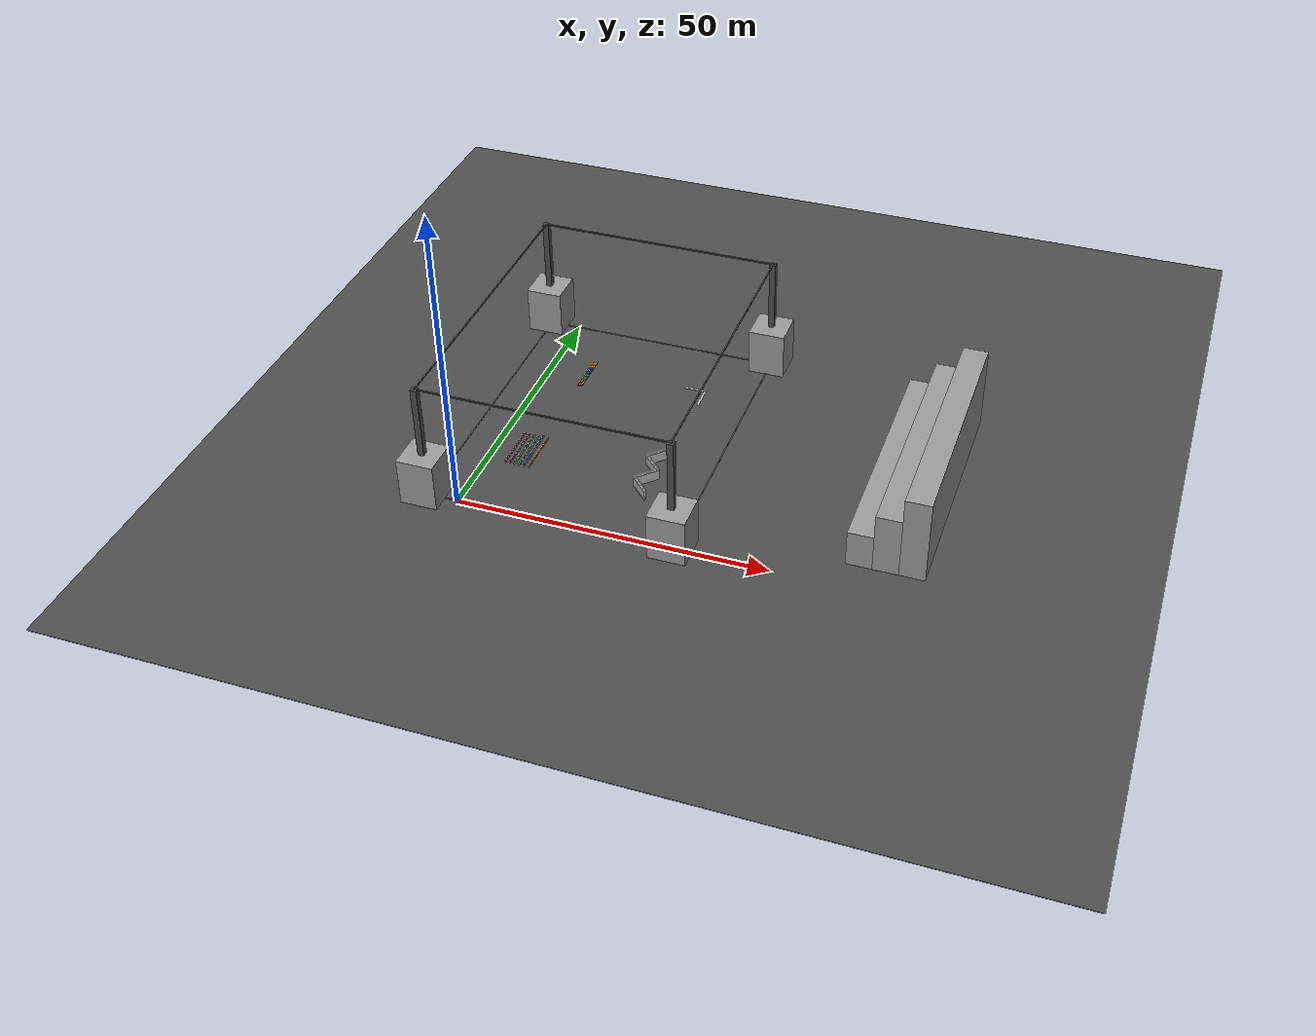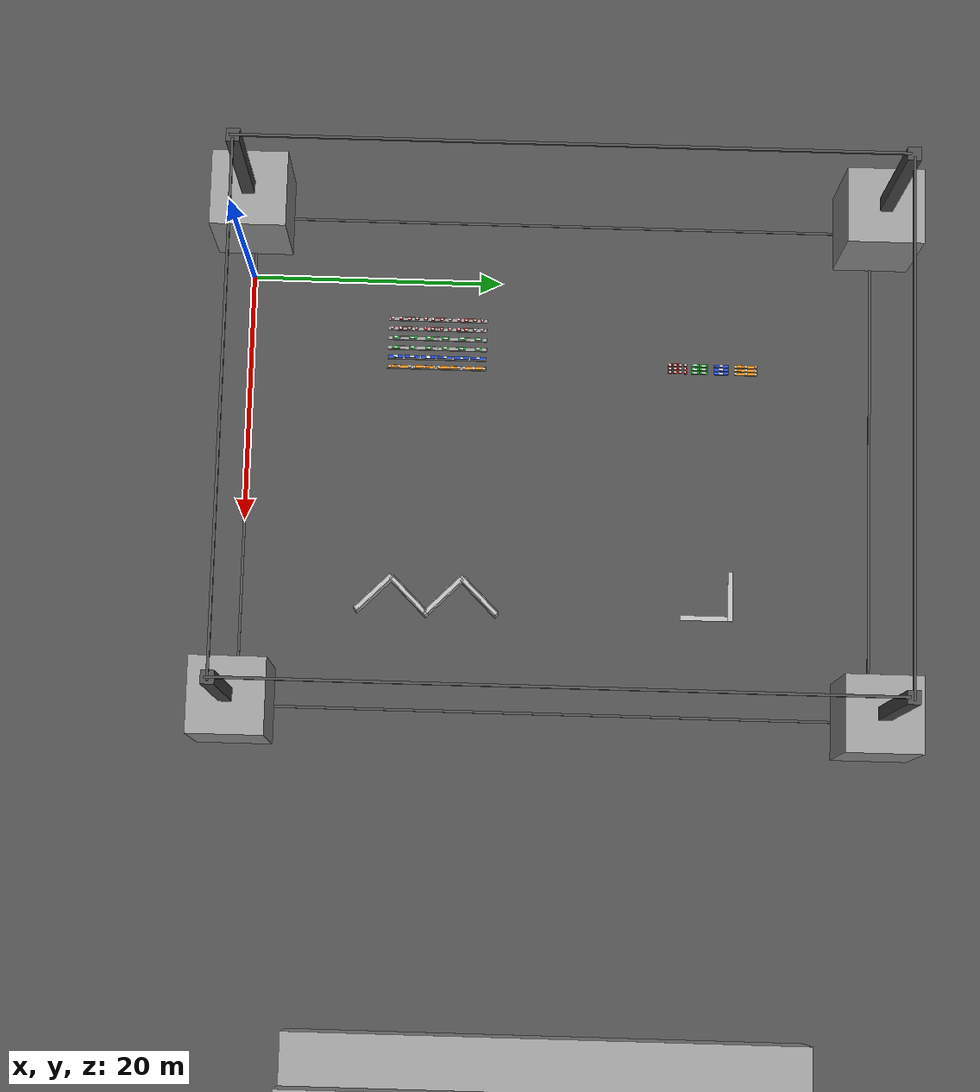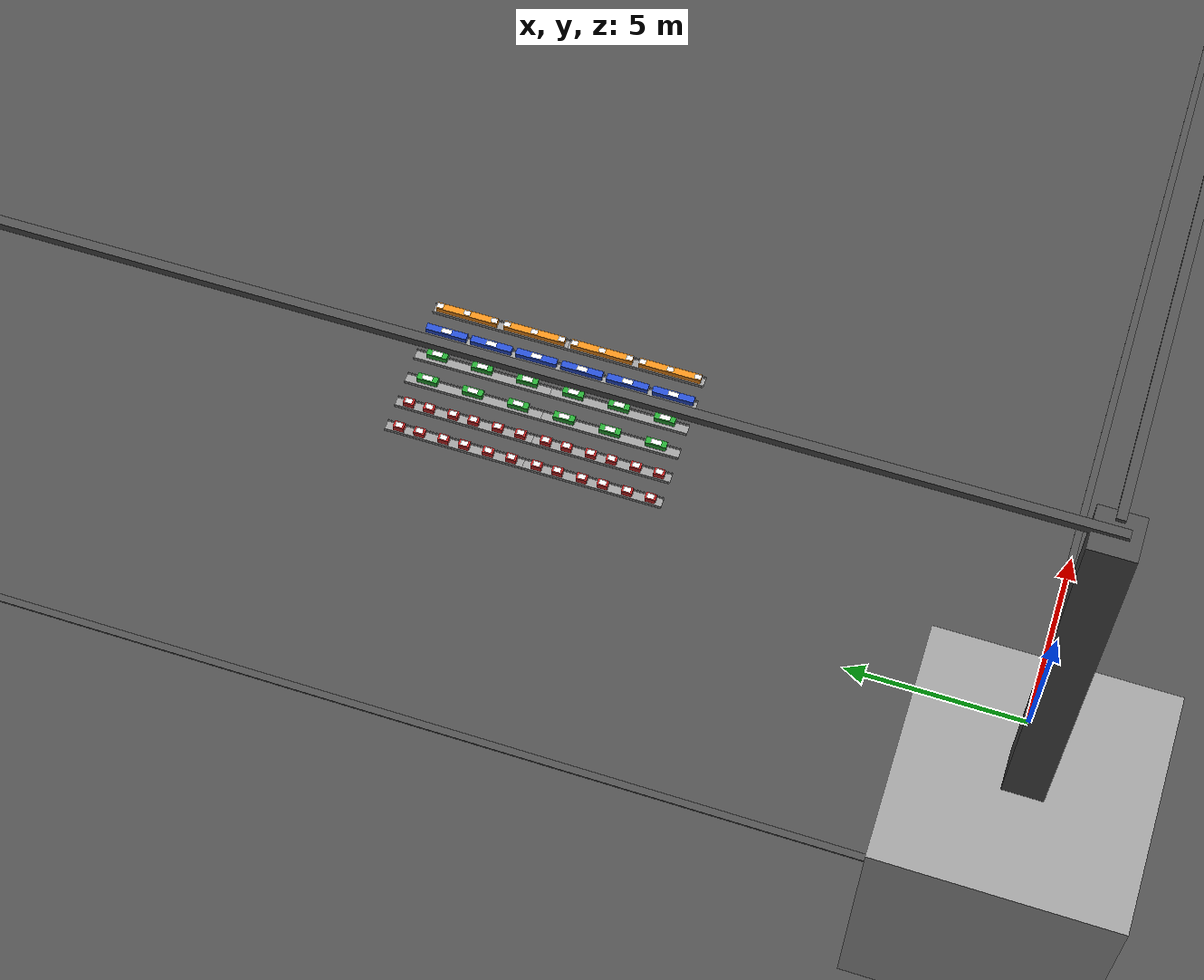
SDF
<?xml version="1.0" ?>
<sdf version="1.5">
  <world name="default">

    <gui fullscreen='0'>
      <camera name='user_camera'>
        <pose>-61.3 -26.2 72 0 0.53 0.62</pose>
      </camera>
    </gui>

    <scene>
      <grid>false</grid>
      <origin_visual>false</origin_visual>
    </scene>

    <!-- A global light source -->
    <include>
      <uri>model://sun</uri>
    </include>
    <!-- A ground plane -->
    <include>
      <uri>model://mbzirc_plane</uri>
      <name>mbzirc_plane</name>
	  <pose> 30.0 30.0 0.1 0 0 0 </pose>
    </include>

    <include>
      <uri>model://mbzirc_uav_wall</uri>
      <name>mbzirc_uav_wall</name>
	  <pose> 26.0 19.0 0.1 0 0 2.3561944902</pose>
    </include>
    <include>
      <uri>model://mbzirc_ugv_wall</uri>
      <name>mbzirc_ugv_wall</name>
	  <pose> 27.0 37.0 0.1 0 0 0 </pose>
    </include>

    <include>
      <uri>model://mbzirc_uav_channel</uri>
      <name>mbzirc_uav_channel_1</name>
	  <pose> 7.0 15.0 0.1 0 0 0 </pose>
    </include>
    <include>
      <uri>model://mbzirc_uav_channel</uri>
      <name>mbzirc_uav_channel_2</name>
	  <pose> 7.0 11.0 0.1 0 0 0 </pose>
    </include>
    <include>
      <uri>model://mbzirc_uav_channel</uri>
      <name>mbzirc_uav_channel_3</name>
	  <pose> 6.2 15.0 0.1 0 0 0 </pose>
    </include>
    <include>
      <uri>model://mbzirc_uav_channel</uri>
      <name>mbzirc_uav_channel_4</name>
	  <pose> 6.2 11.0 0.1 0 0 0 </pose>
    </include>
    <include>
      <uri>model://mbzirc_uav_channel</uri>
      <name>mbzirc_uav_channel_5</name>
	  <pose> 5.4 15.0 0.1 0 0 0 </pose>
    </include>
    <include>
      <uri>model://mbzirc_uav_channel</uri>
      <name>mbzirc_uav_channel_6</name>
	  <pose> 5.4 11.0 0.1 0 0 0 </pose>
    </include>
    <include>
      <uri>model://mbzirc_uav_channel</uri>
      <name>mbzirc_uav_channel_7</name>
	  <pose> 4.6 15.0 0.1 0 0 0 </pose>
    </include>
    <include>
      <uri>model://mbzirc_uav_channel</uri>
      <name>mbzirc_uav_channel_8</name>
	  <pose> 4.6 11.0 0.1 0 0 0 </pose>
    </include>
    <include>
      <uri>model://mbzirc_uav_channel</uri>
      <name>mbzirc_uav_channel_9</name>
	  <pose> 3.8 15.0 0.1 0 0 0 </pose>
    </include>
    <include>
      <uri>model://mbzirc_uav_channel</uri>
      <name>mbzirc_uav_channel_10</name>
	  <pose> 3.8 11.0 0.1 0 0 0 </pose>
    </include>
    <include>
      <uri>model://mbzirc_uav_channel</uri>
      <name>mbzirc_uav_channel_11</name>
	  <pose> 3.0 15.0 0.1 0 0 0 </pose>
    </include>
    <include>
      <uri>model://mbzirc_uav_channel</uri>
      <name>mbzirc_uav_channel_12</name>
	  <pose> 3.0 11.0 0.1 0 0 0 </pose>
    </include>

    <include>
      <uri>model://mbzirc_box_orange</uri>
      <name>mbzirc_box_orange_1</name>
	  <pose> 7.15 18.0 0.3 0 0 0 </pose>
    </include>
    <include>
      <uri>model://mbzirc_box_orange</uri>
      <name>mbzirc_box_orange_2</name>
	  <pose> 7.15 16.0 0.3 0 0 0 </pose>
    </include>
    <include>
      <uri>model://mbzirc_box_orange</uri>
      <name>mbzirc_box_orange_3</name>
	  <pose> 7.15 14.0 0.3 0 0 0 </pose>
    </include>
    <include>
      <uri>model://mbzirc_box_orange</uri>
      <name>mbzirc_box_orange_4</name>
	  <pose> 7.15 12.0 0.3 0 0 0 </pose>
    </include>

    <include>
      <uri>model://mbzirc_box_blue</uri>
      <name>mbzirc_box_blue_1</name>
	  <pose> 6.35 18.33 0.4 0 0 0 </pose>
    </include>
    <include>
      <uri>model://mbzirc_box_blue</uri>
      <name>mbzirc_box_blue_2</name>
	  <pose> 6.35 17.0 0.4 0 0 0 </pose>
    </include>
    <include>
      <uri>model://mbzirc_box_blue</uri>
      <name>mbzirc_box_blue_3</name>
	  <pose> 6.35 15.67 0.4 0 0 0 </pose>
    </include>
    <include>
      <uri>model://mbzirc_box_blue</uri>
      <name>mbzirc_box_blue_4</name>
	  <pose> 6.35 14.33 0.4 0 0 0 </pose>
    </include>
    <include>
      <uri>model://mbzirc_box_blue</uri>
      <name>mbzirc_box_blue_5</name>
	  <pose> 6.35 13.0 0.4 0 0 0 </pose>
    </include>
    <include>
      <uri>model://mbzirc_box_blue</uri>
      <name>mbzirc_box_blue_6</name>
	  <pose> 6.35 11.67 0.4 0 0 0 </pose>
    </include>

    <include>
      <uri>model://mbzirc_box_green</uri>
      <name>mbzirc_box_green_1</name>
	  <pose> 5.57 18.33 0.4 0 0 0 </pose>
    </include>
    <include>
      <uri>model://mbzirc_box_green</uri>
      <name>mbzirc_box_green_2</name>
	  <pose> 5.57 17.0 0.4 0 0 0 </pose>
    </include>
    <include>
      <uri>model://mbzirc_box_green</uri>
      <name>mbzirc_box_green_3</name>
	  <pose> 5.57 15.67 0.4 0 0 0 </pose>
    </include>
    <include>
      <uri>model://mbzirc_box_green</uri>
      <name>mbzirc_box_green_4</name>
	  <pose> 5.57 14.33 0.4 0 0 0 </pose>
    </include>
    <include>
      <uri>model://mbzirc_box_green</uri>
      <name>mbzirc_box_green_5</name>
	  <pose> 5.57 13.0 0.4 0 0 0 </pose>
    </include>
    <include>
      <uri>model://mbzirc_box_green</uri>
      <name>mbzirc_box_green_6</name>
	  <pose> 5.57 11.67 0.4 0 0 0 </pose>
    </include>

    <include>
      <uri>model://mbzirc_box_green</uri>
      <name>mbzirc_box_green_7</name>
	  <pose> 4.75 18.33 0.4 0 0 0 </pose>
    </include>
    <include>
      <uri>model://mbzirc_box_green</uri>
      <name>mbzirc_box_green_8</name>
	  <pose> 4.75 17.0 0.4 0 0 0 </pose>
    </include>
    <include>
      <uri>model://mbzirc_box_green</uri>
      <name>mbzirc_box_green_9</name>
	  <pose> 4.75 15.67 0.4 0 0 0 </pose>
    </include>
    <include>
      <uri>model://mbzirc_box_green</uri>
      <name>mbzirc_box_green_10</name>
	  <pose> 4.75 14.33 0.4 0 0 0 </pose>
    </include>
    <include>
      <uri>model://mbzirc_box_green</uri>
      <name>mbzirc_box_green_11</name>
	  <pose> 4.75 13.0 0.4 0 0 0 </pose>
    </include>
    <include>
      <uri>model://mbzirc_box_green</uri>
      <name>mbzirc_box_green_12</name>
	  <pose> 4.75 11.67 0.4 0 0 0 </pose>
    </include>

    <include>
      <uri>model://mbzirc_box_red</uri>
      <name>mbzirc_box_red_1</name>
	  <pose> 3.95 18.6 0.3 0 0 0 </pose>
    </include>
    <include>
      <uri>model://mbzirc_box_red</uri>
      <name>mbzirc_box_red_2</name>
	  <pose> 3.95 18.0 0.3 0 0 0 </pose>
    </include>
    <include>
      <uri>model://mbzirc_box_red</uri>
      <name>mbzirc_box_red_3</name>
	  <pose> 3.95 17.3 0.3 0 0 0 </pose>
    </include>
    <include>
      <uri>model://mbzirc_box_red</uri>
      <name>mbzirc_box_red_4</name>
	  <pose> 3.95 16.7 0.3 0 0 0 </pose>
    </include>
    <include>
      <uri>model://mbzirc_box_red</uri>
      <name>mbzirc_box_red_5</name>
	  <pose> 3.95 16.0 0.3 0 0 0 </pose>
    </include>
    <include>
      <uri>model://mbzirc_box_red</uri>
      <name>mbzirc_box_red_6</name>
	  <pose> 3.95 15.33 0.3 0 0 0 </pose>
    </include>

    <include>
      <uri>model://mbzirc_box_red</uri>
      <name>mbzirc_box_red_7</name>
	  <pose> 3.95 14.6 0.3 0 0 0 </pose>
    </include>
    <include>
      <uri>model://mbzirc_box_red</uri>
      <name>mbzirc_box_red_8</name>
	  <pose> 3.95 14.0 0.3 0 0 0 </pose>
    </include>
    <include>
      <uri>model://mbzirc_box_red</uri>
      <name>mbzirc_box_red_9</name>
	  <pose> 3.95 13.3 0.3 0 0 0 </pose>
    </include>
    <include>
      <uri>model://mbzirc_box_red</uri>
      <name>mbzirc_box_red_10</name>
	  <pose> 3.95 12.7 0.3 0 0 0 </pose>
    </include>
    <include>
      <uri>model://mbzirc_box_red</uri>
      <name>mbzirc_box_red_11</name>
	  <pose> 3.95 12.0 0.3 0 0 0 </pose>
    </include>
    <include>
      <uri>model://mbzirc_box_red</uri>
      <name>mbzirc_box_red_12</name>
	  <pose> 3.95 11.33 0.3 0 0 0 </pose>
    </include>

    <include>
      <uri>model://mbzirc_box_red</uri>
      <name>mbzirc_box_red_13</name>
	  <pose> 3.15 18.6 0.3 0 0 0 </pose>
    </include>
    <include>
      <uri>model://mbzirc_box_red</uri>
      <name>mbzirc_box_red_14</name>
	  <pose> 3.15 18.0 0.3 0 0 0 </pose>
    </include>
    <include>
      <uri>model://mbzirc_box_red</uri>
      <name>mbzirc_box_red_15</name>
	  <pose> 3.15 17.3 0.3 0 0 0 </pose>
    </include>
    <include>
      <uri>model://mbzirc_box_red</uri>
      <name>mbzirc_box_red_16</name>
	  <pose> 3.15 16.7 0.3 0 0 0 </pose>
    </include>
    <include>
      <uri>model://mbzirc_box_red</uri>
      <name>mbzirc_box_red_17</name>
	  <pose> 3.15 16.0 0.3 0 0 0 </pose>
    </include>
    <include>
      <uri>model://mbzirc_box_red</uri>
      <name>mbzirc_box_red_18</name>
	  <pose> 3.15 15.33 0.3 0 0 0 </pose>
    </include>

    <include>
      <uri>model://mbzirc_box_red</uri>
      <name>mbzirc_box_red_19</name>
	  <pose> 3.15 14.6 0.3 0 0 0 </pose>
    </include>
    <include>
      <uri>model://mbzirc_box_red</uri>
      <name>mbzirc_box_red_20</name>
	  <pose> 3.15 14.0 0.3 0 0 0 </pose>
    </include>
    <include>
      <uri>model://mbzirc_box_red</uri>
      <name>mbzirc_box_red_21</name>
	  <pose> 3.15 13.3 0.3 0 0 0 </pose>
    </include>
    <include>
      <uri>model://mbzirc_box_red</uri>
      <name>mbzirc_box_red_22</name>
	  <pose> 3.15 12.7 0.3 0 0 0 </pose>
    </include>
    <include>
      <uri>model://mbzirc_box_red</uri>
      <name>mbzirc_box_red_23</name>
	  <pose> 3.15 12.0 0.3 0 0 0 </pose>
    </include>
    <include>
      <uri>model://mbzirc_box_red</uri>
      <name>mbzirc_box_red_24</name>
	  <pose> 3.15 11.33 0.3 0 0 0 </pose>
    </include>

    <include>
      <uri>model://mbzirc_box_orange</uri>
      <name>mbzirc_box_orange_ugv_1</name>
	  <pose> 7.0 40.0 0.3 0 0 0 </pose>
    </include>
    <include>
      <uri>model://mbzirc_box_orange</uri>
      <name>mbzirc_box_orange_ugv_2</name>
	  <pose> 6.7 40.0 0.3 0 0 0 </pose>
    </include>
    <include>
      <uri>model://mbzirc_box_orange</uri>
      <name>mbzirc_box_orange_ugv_3</name>
	  <pose> 6.4 40.0 0.3 0 0 0 </pose>
    </include>

    <include>
      <uri>model://mbzirc_box_blue</uri>
      <name>mbzirc_box_blue_ugv_1</name>
	  <pose> 7.0 38.0 0.3 0 0 0 </pose>
    </include>
    <include>
      <uri>model://mbzirc_box_blue</uri>
      <name>mbzirc_box_blue_ugv_2</name>
	  <pose> 6.7 38.0 0.3 0 0 0 </pose>
    </include>
    <include>
      <uri>model://mbzirc_box_blue</uri>
      <name>mbzirc_box_blue_ugv_3</name>
	  <pose> 6.4 38.0 0.3 0 0 0 </pose>
    </include>

    <include>
      <uri>model://mbzirc_box_green</uri>
      <name>mbzirc_box_green_ugv_1</name>
	  <pose> 7.0 36.6 0.3 0 0 0 </pose>
    </include>
    <include>
      <uri>model://mbzirc_box_green</uri>
      <name>mbzirc_box_green_ugv_2</name>
	  <pose> 6.7 36.6 0.3 0 0 0 </pose>
    </include>
    <include>
      <uri>model://mbzirc_box_green</uri>
      <name>mbzirc_box_green_ugv_3</name>
	  <pose> 6.4 36.6 0.3 0 0 0 </pose>
    </include>

    <include>
      <uri>model://mbzirc_box_green</uri>
      <name>mbzirc_box_green_ugv_4</name>
	  <pose> 7.0 35.9 0.3 0 0 0 </pose>
    </include>
    <include>
      <uri>model://mbzirc_box_green</uri>
      <name>mbzirc_box_green_ugv_5</name>
	  <pose> 6.7 35.9 0.3 0 0 0 </pose>
    </include>
    <include>
      <uri>model://mbzirc_box_green</uri>
      <name>mbzirc_box_green_ugv_6</name>
	  <pose> 6.4 35.9 0.3 0 0 0 </pose>
    </include>

    <include>
      <uri>model://mbzirc_box_red</uri>
      <name>mbzirc_box_red_ugv_1</name>
	  <pose> 7.0 35.1 0.3 0 0 0 </pose>
    </include>
    <include>
      <uri>model://mbzirc_box_red</uri>
      <name>mbzirc_box_red_ugv_2</name>
	  <pose> 6.7 35.1 0.3 0 0 0 </pose>
    </include>
    <include>
      <uri>model://mbzirc_box_red</uri>
      <name>mbzirc_box_red_ugv_3</name>
	  <pose> 6.4 35.1 0.3 0 0 0 </pose>
    </include>

    <include>
      <uri>model://mbzirc_box_red</uri>
      <name>mbzirc_box_red_ugv_4</name>
	  <pose> 7.0 34.7 0.3 0 0 0 </pose>
    </include>
    <include>
      <uri>model://mbzirc_box_red</uri>
      <name>mbzirc_box_red_ugv_5</name>
	  <pose> 6.7 34.7 0.3 0 0 0 </pose>
    </include>
    <include>
      <uri>model://mbzirc_box_red</uri>
      <name>mbzirc_box_red_ugv_6</name>
	  <pose> 6.4 34.7 0.3 0 0 0 </pose>
    </include>

    <include>
      <uri>model://mbzirc_box_red</uri>
      <name>mbzirc_box_red_ugv_7</name>
	  <pose> 7.0 34.3 0.3 0 0 0 </pose>
    </include>
    <include>
      <uri>model://mbzirc_box_red</uri>
      <name>mbzirc_box_red_ugv_8</name>
	  <pose> 6.7 34.3 0.3 0 0 0 </pose>
    </include>
    <include>
      <uri>model://mbzirc_box_red</uri>
      <name>mbzirc_box_red_ugv_9</name>
	  <pose> 6.4 34.3 0.3 0 0 0 </pose>
    </include>

    <include>
      <uri>model://mbzirc_box_red</uri>
      <name>mbzirc_box_red_ugv_10</name>
	  <pose> 7.0 33.9 0.3 0 0 0 </pose>
    </include>
    <include>
      <uri>model://mbzirc_box_red</uri>
      <name>mbzirc_box_red_ugv_11</name>
	  <pose> 6.7 33.9 0.3 0 0 0 </pose>
    </include>
    <include>
      <uri>model://mbzirc_box_red</uri>
      <name>mbzirc_box_red_ugv_12</name>
	  <pose> 6.4 33.9 0.3 0 0 0 </pose>
    </include>

    <include>
      <uri>model://mbzirc_stand_6</uri>
      <name>mbzirc_stand_6_2</name>
	  <pose> 62.0 25.0 0.1 0 0 0</pose>
    </include>
    <include>
      <uri>model://mbzirc_stand_10</uri>
      <name>mbzirc_stand_10_2</name>
	  <pose> 66.0 25.0 0.1 0 0 0</pose>
    </include>
    <include>
      <uri>model://mbzirc_stand_14</uri>
      <name>mbzirc_stand_14_2</name>
	  <pose> 70.0 25.0 0.1 0 0 0</pose>
    </include>

    <include>
      <uri>model://mbzirc_roof_50</uri>
      <name>mbzirc_roof_1</name>
	  <pose> -5.0 25.0 20 1.57079 0 0</pose>
    </include>

    <include>
      <uri>model://mbzirc_roof_50</uri>
      <name>mbzirc_roof_2</name>
	  <pose> 35.0 25.0 20 1.57079 0 0</pose>
    </include>

    <include>
      <uri>model://mbzirc_roof_40</uri>
      <name>mbzirc_roof_3</name>
	  <pose> 15.0 50.0 20 0 1.57079 0 </pose>
    </include>

    <include>
      <uri>model://mbzirc_roof_40</uri>
      <name>mbzirc_roof_4</name>
	  <pose> 15.0 0.0 20 0 1.57079 0 </pose>
    </include>

    <include>
      <uri>model://mbzirc_roof_50</uri>
      <name>mbzirc_roof_5</name>
	  <pose> -5.0 25.0 0.1 1.57079 0 0</pose>
    </include>

    <include>
      <uri>model://mbzirc_roof_50</uri>
      <name>mbzirc_roof_6</name>
	  <pose> 35.0 25.0 0.1 1.57079 0 0</pose>
    </include>

    <include>
      <uri>model://mbzirc_roof_40</uri>
      <name>mbzirc_roof_7</name>
	  <pose> 15.0 50.0 0.1 0 1.57079 0 </pose>
    </include>

    <include>
      <uri>model://mbzirc_roof_40</uri>
      <name>mbzirc_roof_8</name>
	  <pose> 15.0 0.0 0.1 0 1.57079 0 </pose>
    </include>

    <include>
      <uri>model://mbzirc_basebox</uri>
      <name>mbzirc_basebox_1</name>
	  <pose> -5.0 0.0 4.0 0 0 0 </pose>
    </include>
    <include>
      <uri>model://mbzirc_basebox</uri>
      <name>mbzirc_basebox_2</name>
	  <pose> 35.0 0.0 4.0 0 0 0 </pose>
    </include>
    <include>
      <uri>model://mbzirc_basebox</uri>
      <name>mbzirc_basebox_3</name>
	  <pose> 35.0 50.0 4.0 0 0 0 </pose>
    </include>
    <include>
      <uri>model://mbzirc_basebox</uri>
      <name>mbzirc_basebox_4</name>
	  <pose> -5.0 50.0 4.0 0 0 0 </pose>
    </include>

    <include>
      <uri>model://mbzirc_column</uri>
      <name>mbzirc_column_1</name>
	  <pose> -5.0 0.0 10.0 0 0 0 </pose>
    </include>
    <include>
      <uri>model://mbzirc_column</uri>
      <name>mbzirc_column_2</name>
	  <pose> 35.0 50.0 10.0 0 0 0 </pose>
    </include>
    <include>
      <uri>model://mbzirc_column</uri>
      <name>mbzirc_column_3</name>
	  <pose> 35.0 0.0 10.0 0 0 0 </pose>
    </include>
    <include>
      <uri>model://mbzirc_column</uri>
      <name>mbzirc_column_4</name>
	  <pose> -5.0 50.0 10.0 0 0 0 </pose>
    </include>

    <physics name='default_physics' default='0' type='ode'>
      <gravity>0 0 -9.8066</gravity>
      <ode>
        <solver>
          <type>quick</type>
          <iters>10</iters>
          <sor>1.3</sor>
          <use_dynamic_moi_rescaling>0</use_dynamic_moi_rescaling>
        </solver>
        <constraints>
          <cfm>0</cfm>
          <erp>0.2</erp>
          <contact_max_correcting_vel>100</contact_max_correcting_vel>
          <contact_surface_layer>0.001</contact_surface_layer>
        </constraints>
      </ode>
      <max_step_size>0.004</max_step_size>
      <real_time_factor>1</real_time_factor>
      <real_time_update_rate>250</real_time_update_rate>
      <magnetic_field>6.0e-6 2.3e-5 -4.2e-5</magnetic_field>
    </physics>
  </world>
</sdf>

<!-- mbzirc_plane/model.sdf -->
<sdf version="1.5">
  <model name="mbzirc_plane">
    <static>true</static>
    <link name="link">
      <collision name="collision">
        <geometry>
          <box>
            <size>150 150 .1</size>
          </box>
        </geometry>
      </collision>
      <visual name="visual">
        <cast_shadows>false</cast_shadows>
        <geometry>
          <box>
            <size>150 150 .1</size>
          </box>
        </geometry>
        <material>
          <script>
            <uri>model://mbzirc_plane/materials/scripts</uri>
            <uri>model://mbzirc_plane/materials/textures</uri>
            <name>vrc/asphalt</name>
          </script>
        </material>
      </visual>
    </link>
  </model>
</sdf>

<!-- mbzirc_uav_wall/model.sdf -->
<sdf version="1.5">
  <model name="mbzirc_uav_wall">
    <static>true</static>
    <link name="link1">
	<pose frame=''>0.0 0 0.95 0 0.0 0</pose>
      <collision name="collision">
        <geometry>
          <box>
            <size>0.3 4.0 1.7</size>
          </box>
        </geometry>
      </collision>
      <visual name="visual">
        <cast_shadows>false</cast_shadows>
        <geometry>
          <box>
            <size>0.3 4.0 1.7</size>
          </box>
        </geometry>
        <material>
          <script>
            <uri>model://mbzirc_uav_wall/materials/scripts</uri>
            <uri>model://mbzirc_uav_wall/materials/textures</uri>
            <name>vrc/tennis_net</name>
          </script>
        </material>
      </visual>
    </link>
    <link name="link2">
	<pose frame=''>-1.85 2.0 0.95 0 0.0 1.57079</pose>
      <collision name="collision">
        <geometry>
          <box>
            <size>0.3 4.0 1.7</size>
          </box>
        </geometry>
      </collision>
      <visual name="visual">
        <cast_shadows>false</cast_shadows>
        <geometry>
          <box>
            <size>0.3 4.0 1.7</size>
          </box>
        </geometry>
        <material>
          <script>
            <uri>model://mbzirc_uav_wall/materials/scripts</uri>
            <uri>model://mbzirc_uav_wall/materials/textures</uri>
            <name>vrc/tennis_net</name>
          </script>
        </material>
      </visual>
    </link>
    <link name="link3">
	<pose frame=''>-4.0 3.85 0.95 0 0.0 0.0</pose>
      <collision name="collision">
        <geometry>
          <box>
            <size>0.3 4.0 1.7</size>
          </box>
        </geometry>
      </collision>
      <visual name="visual">
        <cast_shadows>false</cast_shadows>
        <geometry>
          <box>
            <size>0.3 4.0 1.7</size>
          </box>
        </geometry>
        <material>
          <script>
            <uri>model://mbzirc_uav_wall/materials/scripts</uri>
            <uri>model://mbzirc_uav_wall/materials/textures</uri>
            <name>vrc/tennis_net</name>
          </script>
        </material>
      </visual>
    </link>
    <link name="link4">
	<pose frame=''>-5.85 6.0 0.95 0 0.0 1.57079</pose>
      <collision name="collision">
        <geometry>
          <box>
            <size>0.3 4.0 1.7</size>
          </box>
        </geometry>
      </collision>
      <visual name="visual">
        <cast_shadows>false</cast_shadows>
        <geometry>
          <box>
            <size>0.3 4.0 1.7</size>
          </box>
        </geometry>
        <material>
          <script>
            <uri>model://mbzirc_uav_wall/materials/scripts</uri>
            <uri>model://mbzirc_uav_wall/materials/textures</uri>
            <name>vrc/tennis_net</name>
          </script>
        </material>
      </visual>
    </link>

	<include>
      <uri>model://mbzirc_uav_channel_2</uri>
      <pose>-0.15 -2.0 1.76 0 0 0</pose>
      <name>mbzirc_uav_channel_1</name>
    </include>

	<include>
      <uri>model://mbzirc_uav_channel_2</uri>
      <pose>-0.0 1.85 1.76 0 0 1.57079</pose>
      <name>mbzirc_uav_channel_2</name>
    </include>

	<include>
      <uri>model://mbzirc_uav_channel_2</uri>
      <pose>-4.15 2.0 1.76 0 0 0</pose>
      <name>mbzirc_uav_channel_3</name>
    </include>

	<include>
      <uri>model://mbzirc_uav_channel_2</uri>
      <pose>-3.85 5.85 1.76 0 0 1.57079</pose>
      <name>mbzirc_uav_channel_4</name>
    </include>

  </model>
</sdf>

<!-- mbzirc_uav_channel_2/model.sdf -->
<sdf version="1.5">
  <model name="mbzirc_uav_channel_2">
    <static>true</static>
    <link name="link1">
	<pose frame=''>0.15 2.0 0.05 0 0.0 0</pose>
      <collision name="collision">
        <geometry>
          <box>
            <size>0.3 3.9 0.01</size>
          </box>
        </geometry>
      </collision>
      <visual name="visual">
        <cast_shadows>false</cast_shadows>
        <geometry>
          <box>
            <size>0.3 3.9 0.01</size>
          </box>
        </geometry>
        <material>
          <script>
            <uri>model://mbzirc_uav_channel_2/materials/scripts</uri>
            <uri>model://mbzirc_uav_channel_2/materials/textures</uri>
            <name>vrc/mesh</name>
          </script>
        </material>
      </visual>
    </link>
    <link name="link2">
	<pose frame=''>-0.04 2.0 0.11 0.0 -0.5 0.0</pose>
      <collision name="collision">
        <geometry>
          <box>
            <size>0.01 3.9 0.15</size>
          </box>
        </geometry>
      </collision>
      <visual name="visual">
        <cast_shadows>false</cast_shadows>
        <geometry>
          <box>
            <size>0.01 3.9 0.15</size>
          </box>
        </geometry>
        <material>
          <script>
            <name>Gazebo/White</name>
            <uri>file://media/materials/scripts/gazebo.material</uri>
          </script>
        </material>
      </visual>
    </link>
    <link name="link3">
	<pose frame=''>0.34 2.0 0.11 0.0 0.5 0.0</pose>
      <collision name="collision">
        <geometry>
          <box>
            <size>0.01 3.9 0.15</size>
          </box>
        </geometry>
      </collision>
      <visual name="visual">
        <cast_shadows>false</cast_shadows>
        <geometry>
          <box>
            <size>0.01 3.9 0.15</size>
          </box>
        </geometry>
        <material>
          <script>
            <name>Gazebo/White</name>
            <uri>file://media/materials/scripts/gazebo.material</uri>
          </script>
        </material>
      </visual>
    </link>
  </model>
</sdf>

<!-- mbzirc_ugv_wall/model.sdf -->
<sdf version="1.5">
  <model name="mbzirc_ugv_wall">
    <static>true</static>
    <link name="link1">
	<pose frame=''>0.0 0 0.05 0 0.0 0</pose>
      <collision name="collision">
        <geometry>
          <box>
            <size>0.4 4.0 0.02</size>
          </box>
        </geometry>
      </collision>
      <visual name="visual">
        <cast_shadows>false</cast_shadows>
        <geometry>
          <box>
            <size>0.4 4.0 0.02</size>
          </box>
        </geometry>
        <material>
          <script>
            <uri>model://mbzirc_ugv_wall/materials/scripts</uri>
            <uri>model://mbzirc_ugv_wall/materials/textures</uri>
            <name>vrc/check</name>
          </script>
        </material>
      </visual>
    </link>
    <link name="link2">
	<pose frame=''>-1.8 2.0 0.05 0 0.0 1.57079</pose>
      <collision name="collision">
        <geometry>
          <box>
            <size>0.4 4.0 0.02</size>
          </box>
        </geometry>
      </collision>
      <visual name="visual">
        <cast_shadows>false</cast_shadows>
        <geometry>
          <box>
            <size>0.4 4.0 0.02</size>
          </box>
        </geometry>
        <material>
          <script>
            <uri>model://mbzirc_ugv_wall/materials/scripts</uri>
            <uri>model://mbzirc_ugv_wall/materials/textures</uri>
            <name>vrc/check</name>
          </script>
        </material>
      </visual>
    </link>
  </model>
</sdf>

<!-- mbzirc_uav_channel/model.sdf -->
<sdf version="1.5">
  <model name="mbzirc_uav_channel">
    <static>true</static>
    <link name="link1">
	<pose frame=''>0.15 2.0 0.05 0 0.0 0</pose>
      <collision name="collision">
        <geometry>
          <box>
            <size>0.3 4.0 0.01</size>
          </box>
        </geometry>
      </collision>
      <visual name="visual">
        <cast_shadows>false</cast_shadows>
        <geometry>
          <box>
            <size>0.3 4.0 0.01</size>
          </box>
        </geometry>
        <material>
          <script>
            <name>Gazebo/Grey</name>
            <uri>file://media/materials/scripts/gazebo.material</uri>
          </script>
        </material>
      </visual>
    </link>
    <link name="link2">
	<pose frame=''>0.0 2.0 0.075 0 0.0 0.0</pose>
      <collision name="collision">
        <geometry>
          <box>
            <size>0.01 4.0 0.15</size>
          </box>
        </geometry>
      </collision>
      <visual name="visual">
        <cast_shadows>false</cast_shadows>
        <geometry>
          <box>
            <size>0.01 4.0 0.15</size>
          </box>
        </geometry>
        <material>
          <script>
            <name>Gazebo/Grey</name>
            <uri>file://media/materials/scripts/gazebo.material</uri>
          </script>
        </material>
      </visual>
    </link>
    <link name="link3">
	<pose frame=''>0.3 2.0 0.075 0 0.0 0.0</pose>
      <collision name="collision">
        <geometry>
          <box>
            <size>0.01 4.0 0.15</size>
          </box>
        </geometry>
      </collision>
      <visual name="visual">
        <cast_shadows>false</cast_shadows>
        <geometry>
          <box>
            <size>0.01 4.0 0.15</size>
          </box>
        </geometry>
        <material>
          <script>
            <name>Gazebo/Grey</name>
            <uri>file://media/materials/scripts/gazebo.material</uri>
          </script>
        </material>
      </visual>
    </link>
  </model>
</sdf>

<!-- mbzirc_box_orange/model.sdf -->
<sdf version="1.5">
  <model name="mbzirc_box_orange">
    <pose>0 0 0.3 0 0 0</pose>
    <link name="link">
      <collision name="collision">
        <geometry>
          <box>
            <size>0.2 1.8 0.2</size>
          </box>
        </geometry>
      </collision>
      <visual name="visual">
        <geometry>
          <box>
            <size>0.2 1.8 0.2</size>
          </box>
        </geometry>
        <material>
          <script>
            <name>Gazebo/Orange</name>
            <uri>file://media/materials/scripts/gazebo.material</uri>
          </script>
        </material>
      </visual>
      <collision name="collision_top">
        <pose>0 0 0.1 0 0 0</pose>
        <geometry>
          <box>
            <size>0.15 0.19 0.01</size>
          </box>
        </geometry>
      </collision>
      <visual name="visual_top">
        <pose>0 0 0.1 0 0 0</pose>
        <geometry>
          <box>
            <size>0.15 0.19 0.01</size>
          </box>
        </geometry>
        <material>
          <script>
            <name>Gazebo/White</name>
            <uri>file://media/materials/scripts/gazebo.material</uri>
          </script>
        </material>
      </visual>
      <collision name="collision_top_left">
        <pose>0 0.805 0.1 0 0 0</pose>
        <geometry>
          <box>
            <size>0.15 0.19 0.01</size>
          </box>
        </geometry>
      </collision>
      <visual name="visual_top_left">
        <pose>0 0.805 0.1 0 0 0</pose>
        <geometry>
          <box>
            <size>0.15 0.19 0.01</size>
          </box>
        </geometry>
        <material>
          <script>
            <name>Gazebo/White</name>
            <uri>file://media/materials/scripts/gazebo.material</uri>
          </script>
        </material>
      </visual>
      <collision name="collision_top_right">
        <pose>0 -0.805 0.1 0 0 0</pose>
        <geometry>
          <box>
            <size>0.15 0.19 0.01</size>
          </box>
        </geometry>
      </collision>
      <visual name="visual_top_right">
        <pose>0 -0.805 0.1 0 0 0</pose>
        <geometry>
          <box>
            <size>0.15 0.19 0.01</size>
          </box>
        </geometry>
        <material>
          <script>
            <name>Gazebo/White</name>
            <uri>file://media/materials/scripts/gazebo.material</uri>
          </script>
        </material>
      </visual>
    </link>
  </model>
</sdf>

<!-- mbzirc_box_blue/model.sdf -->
<sdf version="1.5">
  <model name="mbzirc_box_blue">
    <pose>0 0 0.3 0 0 0</pose>
    <link name="link">
      <collision name="collision">
        <geometry>
          <box>
            <size>0.2 1.2 0.2</size>
          </box>
        </geometry>
      </collision>
      <visual name="visual">
        <geometry>
          <box>
            <size>0.2 1.2 0.2</size>
          </box>
        </geometry>
        <material>
          <script>
            <name>Gazebo/Blue</name>
            <uri>file://media/materials/scripts/gazebo.material</uri>
          </script>
        </material>
      </visual>
      <collision name="collision_top">
        <pose>0 0 0.1 0 0 0</pose>
        <geometry>
          <box>
            <size>0.15 0.3 0.01</size>
          </box>
        </geometry>
      </collision>
      <visual name="visual_top">
        <pose>0 0 0.1 0 0 0</pose>
        <geometry>
          <box>
            <size>0.15 0.3 0.01</size>
          </box>
        </geometry>
        <material>
          <script>
            <name>Gazebo/White</name>
            <uri>file://media/materials/scripts/gazebo.material</uri>
          </script>
        </material>
      </visual>
    </link>
  </model>
</sdf>

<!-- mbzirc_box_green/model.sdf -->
<sdf version="1.5">
  <model name="mbzirc_box_green">
    <pose>0 0 0.3 0 0 0</pose>
    <link name="link">
      <collision name="collision">
        <geometry>
          <box>
            <size>0.2 0.6 0.2</size>
          </box>
        </geometry>
      </collision>
      <visual name="visual">
        <geometry>
          <box>
            <size>0.2 0.6 0.2</size>
          </box>
        </geometry>
        <material>
          <script>
            <name>Gazebo/Green</name>
            <uri>file://media/materials/scripts/gazebo.material</uri>
          </script>
        </material>
      </visual>
      <collision name="collision_top">
        <pose>0 0 0.1 0 0 0</pose>
        <geometry>
          <box>
            <size>0.15 0.3 0.01</size>
          </box>
        </geometry>
      </collision>
      <visual name="visual_top">
        <pose>0 0 0.1 0 0 0</pose>
        <geometry>
          <box>
            <size>0.15 0.3 0.01</size>
          </box>
        </geometry>
        <material>
          <script>
            <name>Gazebo/White</name>
            <uri>file://media/materials/scripts/gazebo.material</uri>
          </script>
        </material>
      </visual>
    </link>
  </model>
</sdf>

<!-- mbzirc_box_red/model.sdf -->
<sdf version="1.5">
  <model name="mbzirc_box_red">
    <link name="link">
      <inertial>
        <pose>0 0 0.3 0 0 0</pose>
        <mass>1.0</mass>
        <inertia>
          <ixx>0.006667</ixx>
          <ixy>0</ixy>
          <ixz>0</ixz>
          <iyy>0.01083</iyy>
          <iyz>0</iyz>
          <izz>0.01083</izz>
        </inertia>
      </inertial>
      <collision name="collision">
        <geometry>
          <box>
            <size>0.2 0.3 0.2</size>
          </box>
        </geometry>
      </collision>
      <visual name="visual">
        <geometry>
          <box>
            <size>0.2 0.3 0.2</size>
          </box>
        </geometry>
        <material>
          <script>
            <name>Gazebo/Red</name>
            <uri>file://media/materials/scripts/gazebo.material</uri>
          </script>
        </material>
      </visual>
      <collision name="collision_top">
        <pose>0 0 0.1 0 0 0</pose>
        <geometry>
          <box>
            <size>0.15 0.2 0.01</size>
          </box>
        </geometry>
      </collision>
      <visual name="visual_top">
        <pose>0 0 0.1 0 0 0</pose>
        <geometry>
          <box>
            <size>0.15 0.2 0.01</size>
          </box>
        </geometry>
        <material>
          <script>
            <name>Gazebo/White</name>
            <uri>file://media/materials/scripts/gazebo.material</uri>
          </script>
        </material>
      </visual>
    </link>
  </model>
</sdf>

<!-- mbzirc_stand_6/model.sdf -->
<sdf version="1.5">
  <model name="mbzirc_stand_6">
    <static>true</static>
    <link name="link">
      <pose>0 0 3.0 0 0 0</pose>
      <collision name="collision">
        <geometry>
          <box>
            <size>4 40 6</size>
          </box>
        </geometry>
      </collision>
      <visual name="visual">
        <cast_shadows>false</cast_shadows>
        <geometry>
          <box>
            <size>4 40 6</size>
          </box>
        </geometry>
        <material>
          <script>
            <name>Gazebo/Grey</name>
            <uri>file://media/materials/scripts/gazebo.material</uri>
          </script>
        </material>
      </visual>
    </link>
  </model>
</sdf>

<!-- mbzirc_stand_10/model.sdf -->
<sdf version="1.5">
  <model name="mbzirc_stand_10">
    <static>true</static>
    <link name="link">
      <pose>0 0 5.0 0 0 0</pose>
      <collision name="collision">
        <geometry>
          <box>
            <size>4 40 10</size>
          </box>
        </geometry>
      </collision>
      <visual name="visual">
        <cast_shadows>false</cast_shadows>
        <geometry>
          <box>
            <size>4 40 10</size>
          </box>
        </geometry>
        <material>
          <script>
            <name>Gazebo/Grey</name>
            <uri>file://media/materials/scripts/gazebo.material</uri>
          </script>
        </material>
      </visual>
    </link>
  </model>
</sdf>

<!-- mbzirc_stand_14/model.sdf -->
<sdf version="1.5">
  <model name="mbzirc_stand_14">
    <static>true</static>
    <link name="link">
      <pose>0 0 7.0 0 0 0</pose>
      <collision name="collision">
        <geometry>
          <box>
            <size>4 40 14</size>
          </box>
        </geometry>
      </collision>
      <visual name="visual">
        <cast_shadows>false</cast_shadows>
        <geometry>
          <box>
            <size>4 40 14</size>
          </box>
        </geometry>
        <material>
          <script>
            <name>Gazebo/Grey</name>
            <uri>file://media/materials/scripts/gazebo.material</uri>
          </script>
        </material>
      </visual>
    </link>
  </model>
</sdf>

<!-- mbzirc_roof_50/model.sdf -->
<sdf version="1.5">
  <model name="mbzirc_roof_100">
    <static>true</static>
    <link name="link">
	<pose frame=''>0.0 0 0.25 0 0.0 0</pose>
      <collision name="collision">
        <geometry>
          <box>
            <size>0.2 0.2 50</size>
          </box>
        </geometry>
      </collision>
      <visual name="visual">
        <cast_shadows>false</cast_shadows>
        <geometry>
          <box>
            <size>0.2 0.2 50</size>
          </box>
        </geometry>
        <material>
          <script>
            <name>Gazebo/DarkGrey</name>
            <uri>file://media/materials/scripts/gazebo.material</uri>
          </script>
        </material>
      </visual>
    </link>
  </model>
</sdf>

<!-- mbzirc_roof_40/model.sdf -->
<sdf version="1.5">
  <model name="mbzirc_roof_40">
    <static>true</static>
    <link name="link">
	<pose frame=''>0.0 0 0.25 0 0.0 0</pose>
      <collision name="collision">
        <geometry>
          <box>
            <size>0.2 0.2 40</size>
          </box>
        </geometry>
      </collision>
      <visual name="visual">
        <cast_shadows>false</cast_shadows>
        <geometry>
          <box>
            <size>0.2 0.2 40</size>
          </box>
        </geometry>
        <material>
          <script>
            <name>Gazebo/DarkGrey</name>
            <uri>file://media/materials/scripts/gazebo.material</uri>
          </script>
        </material>
      </visual>
    </link>
  </model>
</sdf>

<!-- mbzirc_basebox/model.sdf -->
<sdf version="1.5">
  <model name="mbzirc_basebox">
    <static>true</static>
    <link name="link">
      <collision name="collision">
        <geometry>
          <box>
            <size>6 6 8</size>
          </box>
        </geometry>
      </collision>
      <visual name="visual">
        <cast_shadows>false</cast_shadows>
        <geometry>
          <box>
            <size>6 6 8</size>
          </box>
        </geometry>
        <material>
          <script>
            <name>Gazebo/Grey</name>
            <uri>file://media/materials/scripts/gazebo.material</uri>
          </script>
        </material>
      </visual>
    </link>
  </model>
</sdf>

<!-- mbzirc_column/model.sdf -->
<sdf version="1.5">
  <model name="mbzirc_column">
    <static>true</static>
    <link name="link">
      <collision name="collision">
        <geometry>
          <box>
            <size>1 1 20</size>
          </box>
        </geometry>
      </collision>
      <visual name="visual">
        <cast_shadows>false</cast_shadows>
        <geometry>
          <box>
            <size>1 1 20</size>
          </box>
        </geometry>
        <material>
          <script>
            <name>Gazebo/DarkGrey</name>
            <uri>file://media/materials/scripts/gazebo.material</uri>
          </script>
        </material>
      </visual>
    </link>
  </model>
</sdf>
